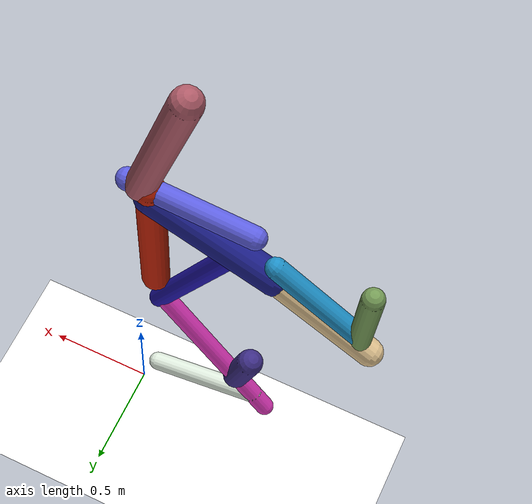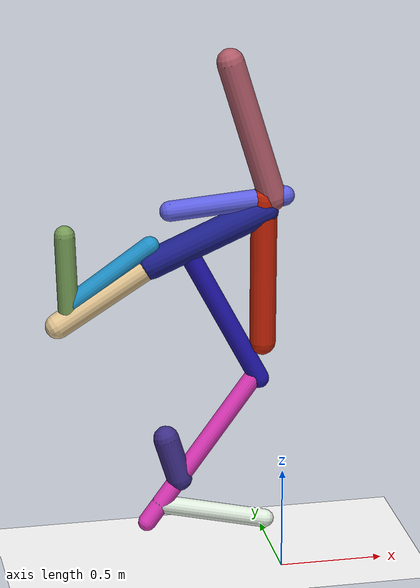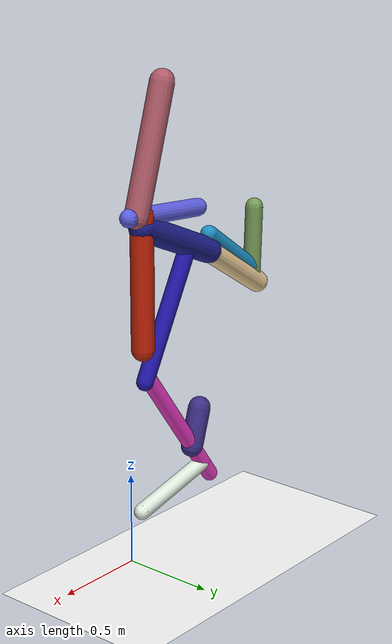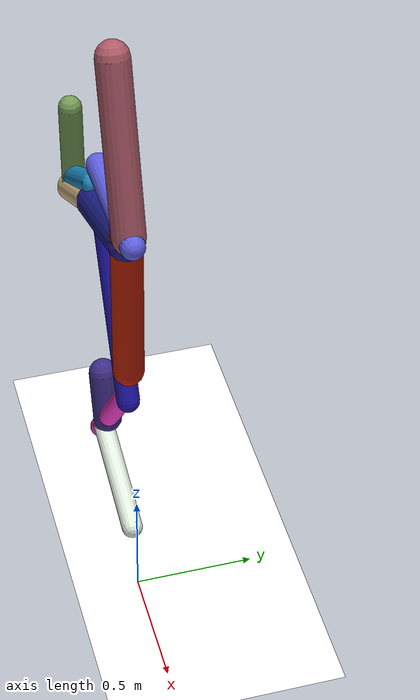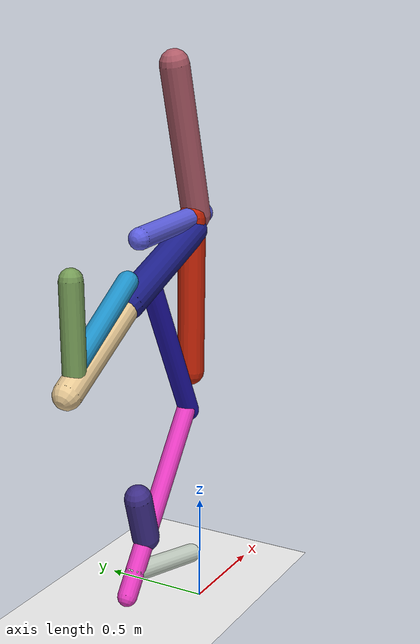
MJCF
<mujoco model="morphology">
    <option timestep="0.01" />
    <default>
        <default class="/" />
        <default class="0/" />
        <default class="0/1/" />
        <default class="0/2/" />
        <default class="0/2/3/" />
        <default class="0/2/3/4/" />
        <default class="0/2/3/4/5/" />
        <default class="0/2/3/4/5/6/" />
        <default class="0/2/3/7/" />
        <default class="0/2/3/7/8/" />
        <default class="0/2/3/7/8/9/" />
        <default class="0/2/3/7/8/10/" />
    </default>
    <asset>
        <texture name="texplane" type="2d" builtin="checker"
            rgb1="0.10000000000000001 0.20000000000000001 0.29999999999999999"
            rgb2="0.20000000000000001 0.29999999999999999 0.40000000000000002" width="300"
            height="300" />
        <material name="MatPlane" class="/" texture="texplane" texrepeat="20 20" specular="1.0"
            shininess="1.0" reflectance="0.5" />
    </asset>
    <worldbody>
        <light name="//unnamed_light_0" class="/" directional="true" pos="0 0 1.5" dir="0 0 -1.3"
            cutoff="100.0" exponent="1.0" diffuse="1 1 1"
            specular="0.10000000000000001 0.10000000000000001 0.10000000000000001" />
        <geom name="ground" class="/" type="plane" size="15 15 0.5" material="MatPlane"
            rgba="1 1 1 1" />
        <site name="body" class="/"
            size="9.9999999999999995e-07 9.9999999999999995e-07 9.9999999999999995e-07"
            pos="0 0 1.8940734958648682" />
        <body pos="0 0 1.8940734958648682" name="0/">
            <joint name="0/rootx/" class="/" type="slide" axis="1 0 0" stiffness="0.0"
                armature="0.0" damping="0.0" />
            <joint name="0/rootz/" class="/" type="slide" axis="0 0 1" stiffness="0.0"
                armature="0.0" damping="0.0" />
            <joint name="0/rooty/" class="/" type="hinge" axis="0 1 0" stiffness="0.0"
                armature="0.0" damping="0.0" />
            <geom name="0/geom" class="0/" type="capsule" contype="1" conaffinity="1" condim="3"
                size="0.047997157800165433"
                rgba="0.36605075489685157 0.37422687429807422 0.87735722492223778 1"
                friction="0.59999999999999998 0.10000000000000001 0.10000000000000001"
                fromto="0 0 0 -0.54240950635780416 0 -0.041992401211551345" />
            <body pos="-0.056929535246868446 0 -0.0044073856686735" name="0/1/">
                <geom name="0/1/geom" class="0/1/" type="capsule" contype="1" conaffinity="1"
                    condim="3" size="0.064886029066199405"
                    rgba="0.68206881967568522 0.35459048500748946 0.40576866925675104 1"
                    friction="0.59999999999999998 0.10000000000000001 0.10000000000000001"
                    fromto="0 0 0 -0.19910755601732144 0 0.65569066702759127" />
            </body>
            <body pos="-0.096592505369824874 0 -0.0074780238767477381" name="0/2/">
                <geom name="0/2/geom" class="0/2/" type="capsule" contype="1" conaffinity="1"
                    condim="3" size="0.062176707000197215"
                    rgba="0.76056658047013115 0.13854378460479044 0.028351029105087466 1"
                    friction="0.59999999999999998 0.10000000000000001 0.10000000000000001"
                    fromto="0 0 0 -0.0044611051743361774 0 -0.70985569889994093" />
                <body pos="-0.00036727762398554975 0 -0.058441597827463686" name="0/2/3/">
                    <joint name="0/2/3/joint/" class="0/2/" type="hinge" axis="0 1 0" limited="true"
                        stiffness="100.0" range="-43.576813510731455 43.576813510731455"
                        armature="0.2" damping="3.5" />
                    <geom name="0/2/3/geom" class="0/2/3/" type="capsule" contype="1"
                        conaffinity="1" condim="3" size="0.069729471461295739"
                        rgba="0.11131074926658036 0.12061130063266601 0.54246945211676045 1"
                        friction="0.59999999999999998 0.10000000000000001 0.10000000000000001"
                        fromto="0 0 0 -0.54048720466074862 0 -0.23101143842905347" />
                    <body pos="-0.53991153037756967 0 -0.23076538756406165" name="0/2/3/4/">
                        <joint name="0/2/3/4/joint/" class="0/2/3/" type="hinge" axis="0 1 0"
                            limited="true" stiffness="100.0"
                            range="-44.787288852227071 44.787288852227071" armature="0.2"
                            damping="3.5" />
                        <geom name="0/2/3/4/geom" class="0/2/3/4/" type="capsule" contype="1"
                            conaffinity="1" condim="3" size="0.060044030159729631"
                            rgba="0.89886118244348878 0.78053543878203868 0.5765112837130324 1"
                            friction="0.59999999999999998 0.10000000000000001 0.10000000000000001"
                            fromto="0 0 0 -0.43835664877620678 0 -0.27160211906348725" />
                        <body pos="-0.38584555041535601 0 -0.23906668101555317" name="0/2/3/4/5/">
                            <joint name="0/2/3/4/5/joint/" class="0/2/3/4/" type="hinge"
                                axis="0 1 0" limited="true" stiffness="100.0"
                                range="-69.715874025536181 69.715874025536181" armature="0.2"
                                damping="3.5" />
                            <geom name="0/2/3/4/5/geom" class="0/2/3/4/5/" type="capsule"
                                contype="1" conaffinity="1" condim="3" size="0.048450648084646081"
                                rgba="0.4581660337501664 0.60845069480418901 0.33812298871979585 1"
                                friction="0.59999999999999998 0.10000000000000001 0.10000000000000001"
                                fromto="0 0 0 -0.012400472403330087 0 0.4055742237647546" />
                            <body pos="-0.0019478336826593214 0 0.063706535378059412"
                                name="0/2/3/4/5/6/">
                                <geom name="0/2/3/4/5/6/geom" class="0/2/3/4/5/6/" type="capsule"
                                    contype="1" conaffinity="1" condim="3"
                                    size="0.045811919703151072"
                                    rgba="0.11821935366017466 0.56196768452297685 0.77557928137259657 1"
                                    friction="0.59999999999999998 0.10000000000000001 0.10000000000000001"
                                    fromto="0 0 0 0.38630433762216243 0 0.26682857125882364" />
                            </body>
                        </body>
                    </body>
                    <body pos="-0.37207814791443844 0 -0.15903116191563516" name="0/2/3/7/">
                        <geom name="0/2/3/7/geom" class="0/2/3/7/" type="capsule" contype="1"
                            conaffinity="1" condim="3" size="0.046780148125379381"
                            rgba="0.12768692462844733 0.083857756177322162 0.65827520703351128 1"
                            friction="0.59999999999999998 0.10000000000000001 0.10000000000000001"
                            fromto="0 0 0 0.35307316702517921 0 -0.67660906447487856" />
                        <body pos="0.33863251023506463 0 -0.64893582223026069" name="0/2/3/7/8/">
                            <geom name="0/2/3/7/8/geom" class="0/2/3/7/8/" type="capsule"
                                contype="1" conaffinity="1" condim="3" size="0.044042329333839836"
                                rgba="0.90053708960195511 0.22391157418149732 0.75186347245993956 1"
                                friction="0.59999999999999998 0.10000000000000001 0.10000000000000001"
                                fromto="0 0 0 -0.53313951322913522 0 -0.7276076607736639" />
                            <body pos="-0.37452848759636614 0 -0.51114162426743559"
                                name="0/2/3/7/8/9/">
                                <joint name="0/2/3/7/8/9/joint/" class="0/2/3/7/8/" type="hinge"
                                    axis="0 1 0" limited="true" stiffness="100.0"
                                    range="-67.790326343878604 67.790326343878604" armature="0.2"
                                    damping="3.5" />
                                <geom name="0/2/3/7/8/9/geom" class="0/2/3/7/8/9/" type="capsule"
                                    contype="1" conaffinity="1" condim="3"
                                    size="0.061361332583292266"
                                    rgba="0.24204175970031649 0.17965605842145993 0.52972299329653905 1"
                                    friction="0.59999999999999998 0.10000000000000001 0.10000000000000001"
                                    fromto="0 0 0 -0.06322320608455767 0 0.20827267149707873" />
                            </body>
                            <site name="0/2/3/7/8/attach10" class="0/2/3/7/8/"
                                size="9.9999999999999995e-07 9.9999999999999995e-07 9.9999999999999995e-07"
                                pos="-0.46804056546027561 0 -0.63876319899660272" />
                            <body pos="-0.46804056546027561 0 -0.63876319899660272"
                                name="0/2/3/7/8/10/">
                                <joint name="0/2/3/7/8/10/joint/" class="0/2/3/7/8/" type="hinge"
                                    axis="0 1 0" limited="true" stiffness="100.0"
                                    range="-50.948570060820181 50.948570060820181" armature="0.2"
                                    damping="3.5" />
                                <geom name="0/2/3/7/8/10/geom" class="0/2/3/7/8/10/" type="capsule"
                                    contype="1" conaffinity="1" condim="3"
                                    size="0.044352594405261757"
                                    rgba="0.87528492891880416 0.9251543873933088 0.86950924737674973 1"
                                    friction="0.59999999999999998 0.10000000000000001 0.10000000000000001"
                                    fromto="0 0 0 0.51105812055138156 0 -0.12142364676601125" />
                            </body>
                        </body>
                    </body>
                </body>
            </body>
            <camera name="0/side" class="0/" mode="trackcom"
                pos="0.40000000000000002 -4 0.20000000000000001"
                quat="0.70699999999999996 0.70699999999999996 0 0" />
        </body>
    </worldbody>
    <actuator>
        <motor name="0/2/3/motor" class="0/2/3/" ctrllimited="true" ctrlrange="-1 1" gear="77"
            joint="0/2/3/joint/" />
        <motor name="0/2/3/4/motor" class="0/2/3/4/" ctrllimited="true" ctrlrange="-1 1" gear="89"
            joint="0/2/3/4/joint/" />
        <motor name="0/2/3/4/5/motor" class="0/2/3/4/5/" ctrllimited="true" ctrlrange="-1 1"
            gear="70" joint="0/2/3/4/5/joint/" />
        <motor name="0/2/3/7/8/9/motor" class="0/2/3/7/8/9/" ctrllimited="true" ctrlrange="-1 1"
            gear="66" joint="0/2/3/7/8/9/joint/" />
        <motor name="0/2/3/7/8/10/motor" class="0/2/3/7/8/10/" ctrllimited="true" ctrlrange="-1 1"
            gear="59" joint="0/2/3/7/8/10/joint/" />
    </actuator>
    <sensor>
        <subtreelinvel name="velocity" body="0/" />
    </sensor>
</mujoco>
